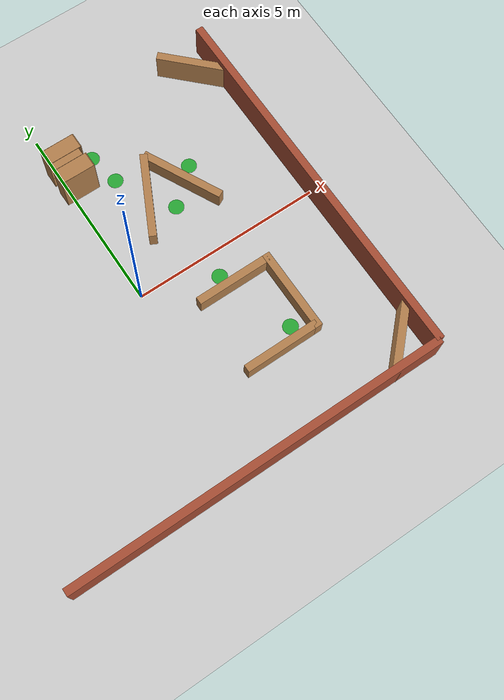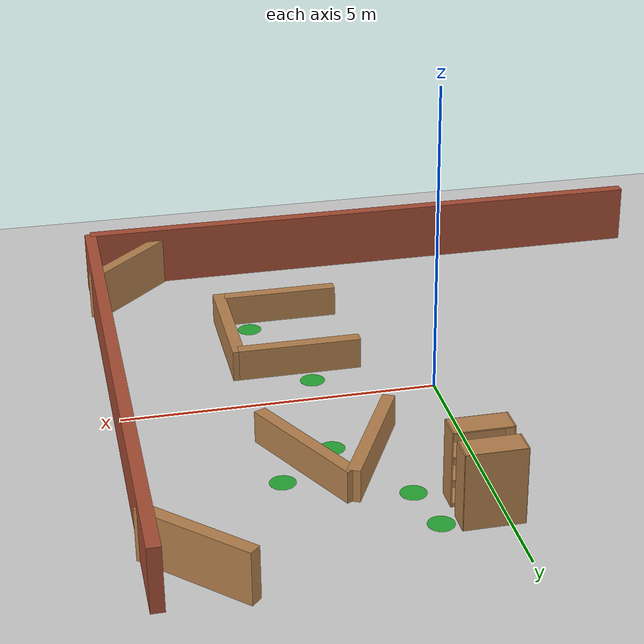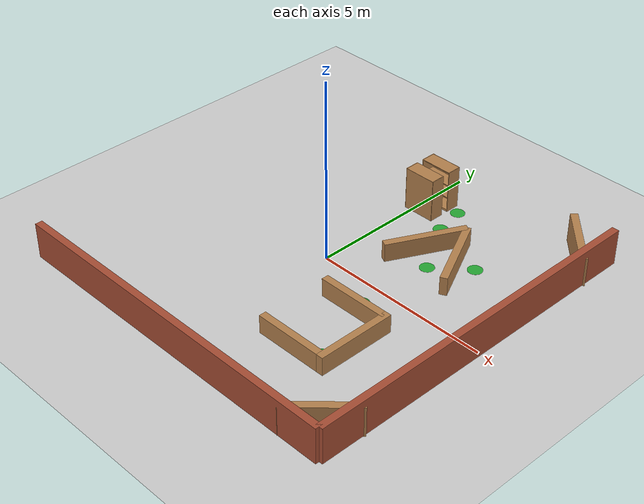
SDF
<sdf version="1.7">
 <world name="default">
  <model name="ground_plane">
   <static>1</static>
   <link name="link">
    <collision name="collision">
     <geometry><plane><normal>0 0 1</normal><size>100 100</size></plane></geometry>
     <surface><friction><ode><mu>100</mu><mu2>50</mu2></ode></friction></surface>
    </collision>
    <visual name="visual">
     <cast_shadows>0</cast_shadows>
     <geometry><plane><normal>0 0 1</normal><size>100 100</size></plane></geometry>
     <material>
      <script><uri>file://media/materials/scripts/gazebo.material</uri><name>Gazebo/Grey</name></script>
     </material>
    </visual>
   </link>
  </model>
  <model name="brick_wall_0">
   <link name="link_4">
    <inertial><mass>1</mass></inertial>
    <visual name="visual">
     <geometry><box><size>10 0.2 1</size></box></geometry>
     <material>
      <lighting>1</lighting>
      <script><uri>file://media/materials/scripts/gazebo.material</uri><name>Gazebo/Bricks</name></script>
      <shader type="pixel"><normal_map>__default__</normal_map></shader>
      <ambient>1 1 1 1</ambient>
      <diffuse>1 1 1 1</diffuse>
      <specular>0.2 0.2 0.2 1</specular>
      <emissive>0 0 0 1</emissive>
     </material>
    </visual>
    <collision name="collision"><geometry><box><size>10 0.2 1</size></box></geometry></collision>
   </link>
   <static>1</static>
   <pose>-0 -5 0.500001 0 -0 0</pose>
  </model>
  <model name="brick_wall_2">
   <link name="link_4">
    <inertial><mass>1</mass></inertial>
    <visual name="visual">
     <geometry><box><size>10 0.2 1</size></box></geometry>
     <material>
      <lighting>1</lighting>
      <script><uri>file://media/materials/scripts/gazebo.material</uri><name>Gazebo/Bricks</name></script>
      <shader type="pixel"><normal_map>__default__</normal_map></shader>
      <ambient>1 1 1 1</ambient>
      <diffuse>1 1 1 1</diffuse>
      <specular>0.2 0.2 0.2 1</specular>
      <emissive>0 0 0 1</emissive>
     </material>
    </visual>
    <collision name="collision"><geometry><box><size>10 0.2 1</size></box></geometry></collision>
   </link>
   <static>1</static>
   <pose>5 -0 0.5 0 0 -1.5708</pose>
  </model>
  <model name="wood_corner">
   <link name="link_5">
    <inertial><mass>0</mass></inertial>
    <pose>-0 0 0 0 -0 0.785</pose>
    <visual name="visual">
     <geometry><box><size>0.2 1.9 1</size></box></geometry>
     <material>
      <lighting>1</lighting>
      <script><uri>file://media/materials/scripts/gazebo.material</uri><name>Gazebo/Wood</name></script>
      <shader type="pixel"><normal_map>__default__</normal_map></shader>
      <ambient>0.3 0.3 0.3 1</ambient>
      <diffuse>0.7 0.7 0.7 1</diffuse>
      <specular>0.01 0.01 0.01 1</specular>
      <emissive>0 0 0 1</emissive>
     </material>
    </visual>
    <collision name="collision"><geometry><box><size>0.2 1.9 1</size></box></geometry></collision>
   </link>
   <static>1</static>
   <pose>4.40116 4.36048 0.3 0 -0 0</pose>
  </model>
  <model name="wood_corner_2">
   <link name="link_5">
    <inertial><mass>0</mass></inertial>
    <pose>-0 0 0 0 -0 0.785</pose>
    <visual name="visual">
     <geometry><box><size>0.2 1.9 1</size></box></geometry>
     <material>
      <lighting>1</lighting>
      <script><uri>file://media/materials/scripts/gazebo.material</uri><name>Gazebo/Wood</name></script>
      <shader type="pixel"><normal_map>__default__</normal_map></shader>
      <ambient>0.3 0.3 0.3 1</ambient>
      <diffuse>0.7 0.7 0.7 1</diffuse>
      <specular>0.01 0.01 0.01 1</specular>
      <emissive>0 0 0 1</emissive>
     </material>
    </visual>
    <collision name="collision"><geometry><box><size>0.2 1.9 1</size></box></geometry></collision>
   </link>
   <static>1</static>
   <pose>4.40116 -4.36048 0.3 0 0 -1.56218</pose>
  </model>
  <model name="triangle_trap">
   <link name="link_0">
    <pose>0.5 0 0 0 -0 0.4636</pose>
    <visual name="visual">
     <geometry><box><size>0.2 2.21 1</size></box></geometry>
     <material>
      <lighting>1</lighting>
      <script><uri>file://media/materials/scripts/gazebo.material</uri><name>Gazebo/Wood</name></script>
      <shader type="pixel"><normal_map>__default__</normal_map></shader>
      <ambient>0.3 0.3 0.3 1</ambient>
      <diffuse>0.7 0.7 0.7 1</diffuse>
      <specular>0.01 0.01 0.01 1</specular>
      <emissive>0 0 0 1</emissive>
     </material>
    </visual>
    <collision name="collision"><geometry><box><size>0.2 2.236 1</size></box></geometry></collision>
   </link>
   <link name="link_1">
    <pose>-0.5 0 0 0 0 -0.4636</pose>
    <visual name="visual">
     <geometry><box><size>0.2 2.236 1</size></box></geometry>
     <material>
      <lighting>1</lighting>
      <script><uri>file://media/materials/scripts/gazebo.material</uri><name>Gazebo/Wood</name></script>
      <shader type="pixel"><normal_map>__default__</normal_map></shader>
      <ambient>0.3 0.3 0.3 1</ambient>
      <diffuse>0.7 0.7 0.7 1</diffuse>
      <specular>0.01 0.01 0.01 1</specular>
      <emissive>0 0 0 1</emissive>
     </material>
    </visual>
    <collision name="collision"><geometry><box><size>0.2 2.236 1</size></box></geometry></collision>
   </link>
   <static>1</static>
   <pose>2 2 0 0 -0 0</pose>
  </model>
  <model name="square_trap">
   <link name="link_0">
    <pose>-1 0 0 0 -0 0</pose>
    <visual name="visual">
     <geometry><box><size>0.2 2 1</size></box></geometry>
     <material>
      <lighting>1</lighting>
      <script><uri>file://media/materials/scripts/gazebo.material</uri><name>Gazebo/Wood</name></script>
      <shader type="pixel"><normal_map>__default__</normal_map></shader>
      <ambient>1 1 1 1</ambient>
      <diffuse>1 1 1 1</diffuse>
      <specular>0.2 0.2 0.2 1</specular>
      <emissive>0 0 0 1</emissive>
     </material>
    </visual>
    <collision name="collision"><geometry><box><size>0.2 2 1</size></box></geometry></collision>
   </link>
   <link name="link_1">
    <pose>-0 1 0 0 -0 0</pose>
    <visual name="visual">
     <geometry><box><size>2.2 0.2 1</size></box></geometry>
     <material>
      <lighting>1</lighting>
      <script><uri>file://media/materials/scripts/gazebo.material</uri><name>Gazebo/Wood</name></script>
      <shader type="pixel"><normal_map>__default__</normal_map></shader>
      <ambient>1 1 1 1</ambient>
      <diffuse>1 1 1 1</diffuse>
      <specular>0.2 0.2 0.2 1</specular>
      <emissive>0 0 0 1</emissive>
     </material>
    </visual>
    <collision name="collision"><geometry><box><size>2.4 0.2 1</size></box></geometry></collision>
   </link>
   <link name="link_2">
    <pose>1 -0 0 0 -0 0</pose>
    <visual name="visual">
     <geometry><box><size>0.2 2 1</size></box></geometry>
     <material>
      <lighting>1</lighting>
      <script><uri>file://media/materials/scripts/gazebo.material</uri><name>Gazebo/Wood</name></script>
      <shader type="pixel"><normal_map>__default__</normal_map></shader>
      <ambient>1 1 1 1</ambient>
      <diffuse>1 1 1 1</diffuse>
      <specular>0.2 0.2 0.2 1</specular>
      <emissive>0 0 0 1</emissive>
     </material>
    </visual>
    <collision name="collision"><geometry><box><size>0.2 2 1</size></box></geometry></collision>
   </link>
   <static>1</static>
   <pose>2 -2 0 0 -0 -1.569</pose>
  </model>
  <model name="bookshelfs">
   <model name="bookshelf">
    <static>1</static>
    <link name="link">
     <inertial><mass>1</mass></inertial>
     <collision name="back">
      <pose>0 0.005 0.6 0 -0 0</pose>
      <geometry><box><size>0.9 0.01 1.2</size></box></geometry>
     </collision>
     <visual name="visual1">
      <pose>0 0.005 0.6 0 -0 0</pose>
      <geometry><box><size>0.9 0.01 1.2</size></box></geometry>
      <material>
       <script><uri>file://media/materials/scripts/gazebo.material</uri><name>Gazebo/Wood</name></script>
      </material>
     </visual>
     <collision name="left_side">
      <pose>0.45 -0.195 0.6 0 -0 0</pose>
      <geometry><box><size>0.02 0.4 1.2</size></box></geometry>
     </collision>
     <visual name="visual2">
      <pose>0.45 -0.195 0.6 0 -0 0</pose>
      <geometry><box><size>0.02 0.4 1.2</size></box></geometry>
      <material>
       <script><uri>file://media/materials/scripts/gazebo.material</uri><name>Gazebo/Wood</name></script>
      </material>
     </visual>
     <collision name="right_side">
      <pose>-0.45 -0.195 0.6 0 -0 0</pose>
      <geometry><box><size>0.02 0.4 1.2</size></box></geometry>
     </collision>
     <visual name="visual3">
      <pose>-0.45 -0.195 0.6 0 -0 0</pose>
      <geometry><box><size>0.02 0.4 1.2</size></box></geometry>
      <material>
       <script><uri>file://media/materials/scripts/gazebo.material</uri><name>Gazebo/Wood</name></script>
      </material>
     </visual>
     <collision name="bottom">
      <pose>0 -0.195 0.03 0 -0 0</pose>
      <geometry><box><size>0.88 0.4 0.06</size></box></geometry>
     </collision>
     <visual name="visual4">
      <pose>0 -0.195 0.03 0 -0 0</pose>
      <geometry><box><size>0.88 0.4 0.06</size></box></geometry>
      <material>
       <script><uri>file://media/materials/scripts/gazebo.material</uri><name>Gazebo/Wood</name></script>
      </material>
     </visual>
     <collision name="top">
      <pose>0 -0.195 1.19 0 -0 0</pose>
      <geometry><box><size>0.88 0.4 0.02</size></box></geometry>
     </collision>
     <visual name="visual5">
      <pose>0 -0.195 1.19 0 -0 0</pose>
      <geometry><box><size>0.88 0.4 0.02</size></box></geometry>
      <material>
       <script><uri>file://media/materials/scripts/gazebo.material</uri><name>Gazebo/Wood</name></script>
      </material>
     </visual>
     <collision name="low_shelf">
      <pose>0 -0.195 0.43 0 -0 0</pose>
      <geometry><box><size>0.88 0.4 0.02</size></box></geometry>
     </collision>
     <visual name="visual6">
      <pose>0 -0.195 0.43 0 -0 0</pose>
      <geometry><box><size>0.88 0.4 0.02</size></box></geometry>
      <material>
       <script><uri>file://media/materials/scripts/gazebo.material</uri><name>Gazebo/Wood</name></script>
      </material>
     </visual>
     <collision name="high_shelf">
      <pose>0 -0.195 0.8 0 -0 0</pose>
      <geometry><box><size>0.88 0.4 0.02</size></box></geometry>
     </collision>
     <visual name="visual7">
      <pose>0 -0.195 0.8 0 -0 0</pose>
      <geometry><box><size>0.88 0.4 0.02</size></box></geometry>
      <material>
       <script><uri>file://media/materials/scripts/gazebo.material</uri><name>Gazebo/Wood</name></script>
      </material>
     </visual>
    </link>
    <pose>-0 0.5 0 0 -0 0</pose>
   </model>
   <model name="bookshelf_0">
    <static>1</static>
    <link name="link">
     <inertial><mass>1</mass></inertial>
     <collision name="back">
      <pose>0 0.005 0.6 0 -0 0</pose>
      <geometry><box><size>0.9 0.01 1.2</size></box></geometry>
     </collision>
     <visual name="visual1">
      <pose>0 0.005 0.6 0 -0 0</pose>
      <geometry><box><size>0.9 0.01 1.2</size></box></geometry>
      <material>
       <script><uri>file://media/materials/scripts/gazebo.material</uri><name>Gazebo/Wood</name></script>
      </material>
     </visual>
     <collision name="left_side">
      <pose>0.45 -0.195 0.6 0 -0 0</pose>
      <geometry><box><size>0.02 0.4 1.2</size></box></geometry>
     </collision>
     <visual name="visual2">
      <pose>0.45 -0.195 0.6 0 -0 0</pose>
      <geometry><box><size>0.02 0.4 1.2</size></box></geometry>
      <material>
       <script><uri>file://media/materials/scripts/gazebo.material</uri><name>Gazebo/Wood</name></script>
      </material>
     </visual>
     <collision name="right_side">
      <pose>-0.45 -0.195 0.6 0 -0 0</pose>
      <geometry><box><size>0.02 0.4 1.2</size></box></geometry>
     </collision>
     <visual name="visual3">
      <pose>-0.45 -0.195 0.6 0 -0 0</pose>
      <geometry><box><size>0.02 0.4 1.2</size></box></geometry>
      <material>
       <script><uri>file://media/materials/scripts/gazebo.material</uri><name>Gazebo/Wood</name></script>
      </material>
     </visual>
     <collision name="bottom">
      <pose>0 -0.195 0.03 0 -0 0</pose>
      <geometry><box><size>0.88 0.4 0.06</size></box></geometry>
     </collision>
     <visual name="visual4">
      <pose>0 -0.195 0.03 0 -0 0</pose>
      <geometry><box><size>0.88 0.4 0.06</size></box></geometry>
      <material>
       <script><uri>file://media/materials/scripts/gazebo.material</uri><name>Gazebo/Wood</name></script>
      </material>
     </visual>
     <collision name="top">
      <pose>0 -0.195 1.19 0 -0 0</pose>
      <geometry><box><size>0.88 0.4 0.02</size></box></geometry>
     </collision>
     <visual name="visual5">
      <pose>0 -0.195 1.19 0 -0 0</pose>
      <geometry><box><size>0.88 0.4 0.02</size></box></geometry>
      <material>
       <script><uri>file://media/materials/scripts/gazebo.material</uri><name>Gazebo/Wood</name></script>
      </material>
     </visual>
     <collision name="low_shelf">
      <pose>0 -0.195 0.43 0 -0 0</pose>
      <geometry><box><size>0.88 0.4 0.02</size></box></geometry>
     </collision>
     <visual name="visual6">
      <pose>0 -0.195 0.43 0 -0 0</pose>
      <geometry><box><size>0.88 0.4 0.02</size></box></geometry>
      <material>
       <script><uri>file://media/materials/scripts/gazebo.material</uri><name>Gazebo/Wood</name></script>
      </material>
     </visual>
     <collision name="high_shelf">
      <pose>0 -0.195 0.8 0 -0 0</pose>
      <geometry><box><size>0.88 0.4 0.02</size></box></geometry>
     </collision>
     <visual name="visual7">
      <pose>0 -0.195 0.8 0 -0 0</pose>
      <geometry><box><size>0.88 0.4 0.02</size></box></geometry>
      <material>
       <script><uri>file://media/materials/scripts/gazebo.material</uri><name>Gazebo/Wood</name></script>
      </material>
     </visual>
    </link>
    <pose>0 -0.5 0 0 -0 3.14159</pose>
   </model>
   <static>1</static>
   <pose>0.254633 3.57694 0 0 -0 0</pose>
  </model>
  <model name="goal_pad_0">
   <link name="link_0">
    <visual name="visual">
     <geometry><cylinder><radius>0.2</radius><length>0.001</length></cylinder></geometry>
     <material>
      <lighting>1</lighting>
      <script><uri>file://media/materials/scripts/gazebo.material</uri><name>Gazebo/Green</name></script>
      <shader type="pixel"><normal_map>__default__</normal_map></shader>
      <ambient>0 1 0 1</ambient>
      <diffuse>0 1 0 1</diffuse>
      <specular>0.1 0.1 0.1 1</specular>
      <emissive>0 0 0 1</emissive>
     </material>
    </visual>
    <collision name="collision">
     <geometry><cylinder><radius>0.2</radius><length>0.001</length></cylinder></geometry>
    </collision>
   </link>
   <static>1</static>
   <pose>2.55445 -2.62051 0 0 -0 0</pose>
  </model>
  <model name="goal_pad_4">
   <link name="link_0">
    <visual name="visual">
     <geometry><cylinder><radius>0.2</radius><length>0.001</length></cylinder></geometry>
     <material>
      <lighting>1</lighting>
      <script><uri>file://media/materials/scripts/gazebo.material</uri><name>Gazebo/Green</name></script>
      <shader type="pixel"><normal_map>__default__</normal_map></shader>
      <ambient>0 1 0 1</ambient>
      <diffuse>0 1 0 1</diffuse>
      <specular>0.1 0.1 0.1 1</specular>
      <emissive>0 0 0 1</emissive>
     </material>
    </visual>
    <collision name="collision">
     <geometry><cylinder><radius>0.2</radius><length>0.001</length></cylinder></geometry>
    </collision>
   </link>
   <static>1</static>
   <pose>2.0 1.53031 0 0 -0 0</pose>
  </model>
  <model name="goal_pad_5">
   <link name="link_0">
    <visual name="visual">
     <geometry><cylinder><radius>0.2</radius><length>0.001</length></cylinder></geometry>
     <material>
      <lighting>1</lighting>
      <script><uri>file://media/materials/scripts/gazebo.material</uri><name>Gazebo/Green</name></script>
      <shader type="pixel"><normal_map>__default__</normal_map></shader>
      <ambient>0 1 0 1</ambient>
      <diffuse>0 1 0 1</diffuse>
      <specular>0.1 0.1 0.1 1</specular>
      <emissive>0 0 0 1</emissive>
     </material>
    </visual>
    <collision name="collision">
     <geometry><cylinder><radius>0.2</radius><length>0.001</length></cylinder></geometry>
    </collision>
   </link>
   <static>1</static>
   <pose>2.89 2.31 0 0 -0 0</pose>
  </model>
  <model name="goal_pad_8">
   <link name="link_0">
    <visual name="visual">
     <geometry><cylinder><radius>0.2</radius><length>0.001</length></cylinder></geometry>
     <material>
      <lighting>1</lighting>
      <script><uri>file://media/materials/scripts/gazebo.material</uri><name>Gazebo/Green</name></script>
      <shader type="pixel"><normal_map>__default__</normal_map></shader>
      <ambient>0 1 0 1</ambient>
      <diffuse>0 1 0 1</diffuse>
      <specular>0.1 0.1 0.1 1</specular>
      <emissive>0 0 0 1</emissive>
     </material>
    </visual>
    <collision name="collision">
     <geometry><cylinder><radius>0.2</radius><length>0.001</length></cylinder></geometry>
    </collision>
   </link>
   <static>1</static>
   <pose>0.95 3.842 0 0 -0 0</pose>
  </model>
  <model name="goal_pad_9">
   <link name="link_0">
    <visual name="visual">
     <geometry><cylinder><radius>0.2</radius><length>0.001</length></cylinder></geometry>
     <material>
      <lighting>1</lighting>
      <script><uri>file://media/materials/scripts/gazebo.material</uri><name>Gazebo/Green</name></script>
      <shader type="pixel"><normal_map>__default__</normal_map></shader>
      <ambient>0 1 0 1</ambient>
      <diffuse>0 1 0 1</diffuse>
      <specular>0.1 0.1 0.1 1</specular>
      <emissive>0 0 0 1</emissive>
     </material>
    </visual>
    <collision name="collision">
     <geometry><cylinder><radius>0.2</radius><length>0.001</length></cylinder></geometry>
    </collision>
   </link>
   <static>1</static>
   <pose>1.123 2.99 0 0 -0 0</pose>
  </model>
  <model name="goal_pad_10">
   <link name="link_0">
    <visual name="visual">
     <geometry><cylinder><radius>0.2</radius><length>0.001</length></cylinder></geometry>
     <material>
      <lighting>1</lighting>
      <script><uri>file://media/materials/scripts/gazebo.material</uri><name>Gazebo/Green</name></script>
      <shader type="pixel"><normal_map>__default__</normal_map></shader>
      <ambient>0 1 0 1</ambient>
      <diffuse>0 1 0 1</diffuse>
      <specular>0.1 0.1 0.1 1</specular>
      <emissive>0 0 0 1</emissive>
     </material>
    </visual>
    <collision name="collision">
     <geometry><cylinder><radius>0.2</radius><length>0.001</length></cylinder></geometry>
    </collision>
   </link>
   <static>1</static>
   <pose>1.864 -0.612 0 0 -0 0</pose>
  </model>
 </world>
</sdf>
